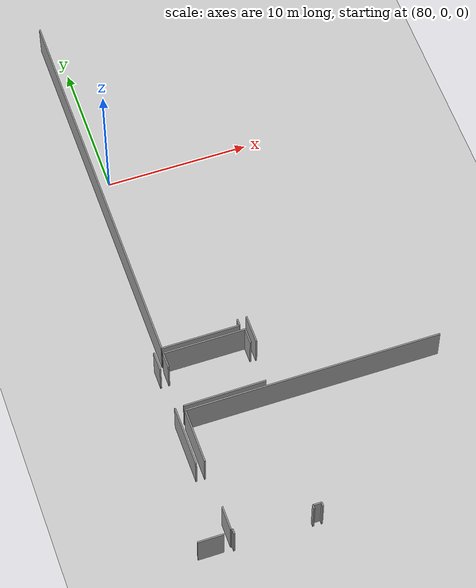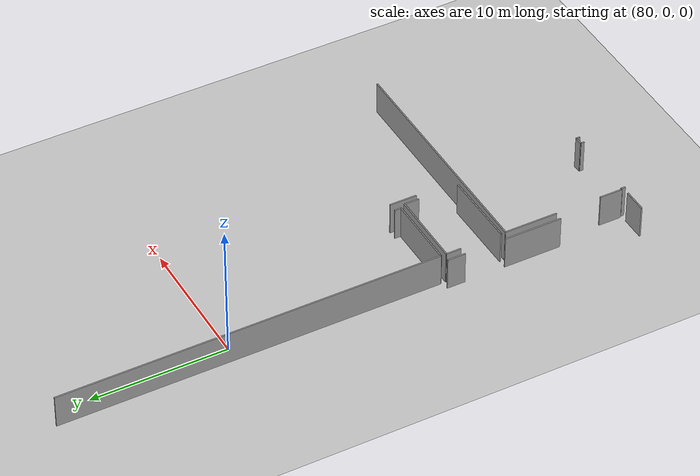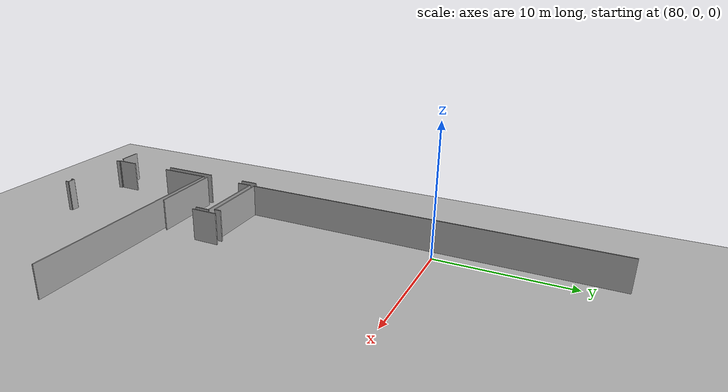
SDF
<sdf version="1.6">
 <world name="default">
  <model name="ground_plane">
   <static>1</static>
   <link name="link">
    <collision name="collision">
     <geometry><plane><normal>0 0 1</normal><size>100 100</size></plane></geometry>
     <surface><friction><ode><mu>100</mu><mu2>50</mu2></ode></friction></surface>
    </collision>
    <visual name="visual">
     <cast_shadows>0</cast_shadows>
     <geometry><plane><normal>0 0 1</normal><size>100 100</size></plane></geometry>
     <material>
      <script><uri>file://media/materials/scripts/gazebo.material</uri><name>Gazebo/Grey</name></script>
     </material>
    </visual>
   </link>
  </model>
  <model name="50010535_PLAN2">
   <static>1</static>
   <link name="Wall_480">
    <collision name="Wall_480_Collision">
     <geometry><box><size>2.03198160137 0.1 2.5</size></box></geometry>
     <pose>1.01599080068 0 1.25 0 0 0</pose>
    </collision>
    <visual name="Wall_480_Visual">
     <pose>1.01599080068 0 1.25 0 0 0</pose>
     <geometry><box><size>2.03198160137 0.1 2.5</size></box></geometry>
     <material>
      <script><uri>file://media/materials/scripts/gazebo.material</uri><name>Gazebo/Grey</name></script>
      <ambient>1 1 1 1</ambient>
     </material>
    </visual>
    <pose>187.585268388 -46.6158586558 0 0 0 1.57079632679</pose>
   </link>
   <link name="Wall_482">
    <collision name="Wall_482_Collision">
     <geometry><box><size>0.494272663164 0.1 2.5</size></box></geometry>
     <pose>0.247136331582 0 1.25 0 0 0</pose>
    </collision>
    <visual name="Wall_482_Visual">
     <pose>0.247136331582 0 1.25 0 0 0</pose>
     <geometry><box><size>0.494272663164 0.1 2.5</size></box></geometry>
     <material>
      <script><uri>file://media/materials/scripts/gazebo.material</uri><name>Gazebo/Grey</name></script>
      <ambient>1 1 1 1</ambient>
     </material>
    </visual>
    <pose>186.942840988 -44.5838770544 0 0 0 -1.57079632679</pose>
   </link>
   <link name="Wall_483">
    <collision name="Wall_483_Collision">
     <geometry><box><size>5.44004879195 0.1 2.5</size></box></geometry>
     <pose>2.72002439598 0 1.25 0 0 0</pose>
    </collision>
    <visual name="Wall_483_Visual">
     <pose>2.72002439598 0 1.25 0 0 0</pose>
     <geometry><box><size>5.44004879195 0.1 2.5</size></box></geometry>
     <material>
      <script><uri>file://media/materials/scripts/gazebo.material</uri><name>Gazebo/Grey</name></script>
      <ambient>1 1 1 1</ambient>
     </material>
    </visual>
    <pose>186.942840988 -45.0781497176 0 0 0 3.14159265359</pose>
   </link>
   <link name="Wall_484">
    <collision name="Wall_484_Collision">
     <geometry><box><size>28.1539741936 0.1 2.5</size></box></geometry>
     <pose>14.0769870968 0 1.25 0 0 0</pose>
    </collision>
    <visual name="Wall_484_Visual">
     <pose>14.0769870968 0 1.25 0 0 0</pose>
     <geometry><box><size>28.1539741936 0.1 2.5</size></box></geometry>
     <material>
      <script><uri>file://media/materials/scripts/gazebo.material</uri><name>Gazebo/Grey</name></script>
      <ambient>1 1 1 1</ambient>
     </material>
    </visual>
    <pose>181.502792196 -45.0781497176 0 0 0 1.57079632679</pose>
   </link>
   <link name="Wall_534">
    <collision name="Wall_534_Collision">
     <geometry><box><size>1.76794597308 0.1 2.5</size></box></geometry>
     <pose>0.883972986538 0 1.25 0 0 0</pose>
    </collision>
    <visual name="Wall_534_Visual">
     <pose>0.883972986538 0 1.25 0 0 0</pose>
     <geometry><box><size>1.76794597308 0.1 2.5</size></box></geometry>
     <material>
      <script><uri>file://media/materials/scripts/gazebo.material</uri><name>Gazebo/Grey</name></script>
      <ambient>1 1 1 1</ambient>
     </material>
    </visual>
    <pose>180.986410678 -59.2567867194 0 0 0 3.14159265359</pose>
   </link>
   <link name="Wall_544">
    <collision name="Wall_544_Collision">
     <geometry><box><size>1.34686124153 0.1 2.5</size></box></geometry>
     <pose>0.673430620763 0 1.25 0 0 0</pose>
    </collision>
    <visual name="Wall_544_Visual">
     <pose>0.673430620763 0 1.25 0 0 0</pose>
     <geometry><box><size>1.34686124153 0.1 2.5</size></box></geometry>
     <material>
      <script><uri>file://media/materials/scripts/gazebo.material</uri><name>Gazebo/Grey</name></script>
      <ambient>1 1 1 1</ambient>
     </material>
    </visual>
    <pose>180.920084115 -45.247905059 0 0 0 -1.57079632679</pose>
   </link>
   <link name="Wall_545">
    <collision name="Wall_545_Collision">
     <geometry><box><size>4.30182398048 0.1 2.5</size></box></geometry>
     <pose>2.15091199024 0 1.25 0 0 0</pose>
    </collision>
    <visual name="Wall_545_Visual">
     <pose>2.15091199024 0 1.25 0 0 0</pose>
     <geometry><box><size>4.30182398048 0.1 2.5</size></box></geometry>
     <material>
      <script><uri>file://media/materials/scripts/gazebo.material</uri><name>Gazebo/Grey</name></script>
      <ambient>1 1 1 1</ambient>
     </material>
    </visual>
    <pose>180.920084115 -49.6531578178 0 0 0 -1.57079632679</pose>
   </link>
   <link name="Wall_547">
    <collision name="Wall_547_Collision">
     <geometry><box><size>1.10290146948 0.1 2.5</size></box></geometry>
     <pose>0.551450734738 0 1.25 0 0 0</pose>
    </collision>
    <visual name="Wall_547_Visual">
     <pose>0.551450734738 0 1.25 0 0 0</pose>
     <geometry><box><size>1.10290146948 0.1 2.5</size></box></geometry>
     <material>
      <script><uri>file://media/materials/scripts/gazebo.material</uri><name>Gazebo/Grey</name></script>
      <ambient>1 1 1 1</ambient>
     </material>
    </visual>
    <pose>181.492373081 -46.5820600624 0 0 0 1.57079632679</pose>
   </link>
   <link name="Wall_548">
    <collision name="Wall_548_Collision">
     <geometry><box><size>5.70128904786 0.1 2.5</size></box></geometry>
     <pose>2.85064452393 0 1.25 0 0 0</pose>
    </collision>
    <visual name="Wall_548_Visual">
     <pose>2.85064452393 0 1.25 0 0 0</pose>
     <geometry><box><size>5.70128904786 0.1 2.5</size></box></geometry>
     <material>
      <script><uri>file://media/materials/scripts/gazebo.material</uri><name>Gazebo/Grey</name></script>
      <ambient>1 1 1 1</ambient>
     </material>
    </visual>
    <pose>181.492373081 -45.4791585929 0 0 0 0.0</pose>
   </link>
   <link name="Wall_549">
    <collision name="Wall_549_Collision">
     <geometry><box><size>1.10290146948 0.1 2.5</size></box></geometry>
     <pose>0.551450734738 0 1.25 0 0 0</pose>
    </collision>
    <visual name="Wall_549_Visual">
     <pose>0.551450734738 0 1.25 0 0 0</pose>
     <geometry><box><size>1.10290146948 0.1 2.5</size></box></geometry>
     <material>
      <script><uri>file://media/materials/scripts/gazebo.material</uri><name>Gazebo/Grey</name></script>
      <ambient>1 1 1 1</ambient>
     </material>
    </visual>
    <pose>187.193662128 -45.4791585929 0 0 0 -1.57079632679</pose>
   </link>
   <link name="Wall_550">
    <collision name="Wall_550_Collision">
     <geometry><box><size>5.70151558649 0.1 2.5</size></box></geometry>
     <pose>2.85075779325 0 1.25 0 0 0</pose>
    </collision>
    <visual name="Wall_550_Visual">
     <pose>2.85075779325 0 1.25 0 0 0</pose>
     <geometry><box><size>5.70151558649 0.1 2.5</size></box></geometry>
     <material>
      <script><uri>file://media/materials/scripts/gazebo.material</uri><name>Gazebo/Grey</name></script>
      <ambient>1 1 1 1</ambient>
     </material>
    </visual>
    <pose>187.193662128 -49.6211380977 0 0 0 -3.13267824743</pose>
   </link>
   <link name="Wall_556">
    <collision name="Wall_556_Collision">
     <geometry><box><size>0.283349110246 0.1 2.5</size></box></geometry>
     <pose>0.141674555123 0 1.25 0 0 0</pose>
    </collision>
    <visual name="Wall_556_Visual">
     <pose>0.141674555123 0 1.25 0 0 0</pose>
     <geometry><box><size>0.283349110246 0.1 2.5</size></box></geometry>
     <material>
      <script><uri>file://media/materials/scripts/gazebo.material</uri><name>Gazebo/Grey</name></script>
      <ambient>1 1 1 1</ambient>
     </material>
    </visual>
    <pose>187.549945046 -59.4481426656 0 0 0 1.57079632679</pose>
   </link>
   <link name="Wall_557">
    <collision name="Wall_557_Collision">
     <geometry><box><size>0.592110696747 0.1 2.5</size></box></geometry>
     <pose>0.296055348373 0 1.25 0 0 0</pose>
    </collision>
    <visual name="Wall_557_Visual">
     <pose>0.296055348373 0 1.25 0 0 0</pose>
     <geometry><box><size>0.592110696747 0.1 2.5</size></box></geometry>
     <material>
      <script><uri>file://media/materials/scripts/gazebo.material</uri><name>Gazebo/Grey</name></script>
      <ambient>1 1 1 1</ambient>
     </material>
    </visual>
    <pose>187.549945046 -59.1647935554 0 0 0 3.14159265359</pose>
   </link>
   <link name="Wall_558">
    <collision name="Wall_558_Collision">
     <geometry><box><size>0.267593374967 0.1 2.5</size></box></geometry>
     <pose>0.133796687484 0 1.25 0 0 0</pose>
    </collision>
    <visual name="Wall_558_Visual">
     <pose>0.133796687484 0 1.25 0 0 0</pose>
     <geometry><box><size>0.267593374967 0.1 2.5</size></box></geometry>
     <material>
      <script><uri>file://media/materials/scripts/gazebo.material</uri><name>Gazebo/Grey</name></script>
      <ambient>1 1 1 1</ambient>
     </material>
    </visual>
    <pose>186.957834349 -59.1647935554 0 0 0 -1.57079632679</pose>
   </link>
   <link name="Wall_559">
    <collision name="Wall_559_Collision">
     <geometry><box><size>0.334428187519 0.1 2.5</size></box></geometry>
     <pose>0.167214093759 0 1.25 0 0 0</pose>
    </collision>
    <visual name="Wall_559_Visual">
     <pose>0.167214093759 0 1.25 0 0 0</pose>
     <geometry><box><size>0.334428187519 0.1 2.5</size></box></geometry>
     <material>
      <script><uri>file://media/materials/scripts/gazebo.material</uri><name>Gazebo/Grey</name></script>
      <ambient>1 1 1 1</ambient>
     </material>
    </visual>
    <pose>181.607745723 -59.4323869304 0 0 0 1.57079632679</pose>
   </link>
   <link name="Wall_560">
    <collision name="Wall_560_Collision">
     <geometry><box><size>0.104953526934 0.1 2.5</size></box></geometry>
     <pose>0.052476763467 0 1.25 0 0 0</pose>
    </collision>
    <visual name="Wall_560_Visual">
     <pose>0.052476763467 0 1.25 0 0 0</pose>
     <geometry><box><size>0.104953526934 0.1 2.5</size></box></geometry>
     <material>
      <script><uri>file://media/materials/scripts/gazebo.material</uri><name>Gazebo/Grey</name></script>
      <ambient>1 1 1 1</ambient>
     </material>
    </visual>
    <pose>181.607745723 -59.0979587428 0 0 0 3.14159265359</pose>
   </link>
   <link name="Wall_561">
    <collision name="Wall_561_Collision">
     <geometry><box><size>1.700602911 0.1 2.5</size></box></geometry>
     <pose>0.8503014555 0 1.25 0 0 0</pose>
    </collision>
    <visual name="Wall_561_Visual">
     <pose>0.8503014555 0 1.25 0 0 0</pose>
     <geometry><box><size>1.700602911 0.1 2.5</size></box></geometry>
     <material>
      <script><uri>file://media/materials/scripts/gazebo.material</uri><name>Gazebo/Grey</name></script>
      <ambient>1 1 1 1</ambient>
     </material>
    </visual>
    <pose>181.502792196 -59.0979587428 0 0 0 1.57079632679</pose>
   </link>
   <link name="Wall_562">
    <collision name="Wall_562_Collision">
     <geometry><box><size>3.95850142628 0.1 2.5</size></box></geometry>
     <pose>1.97925071314 0 1.25 0 0 0</pose>
    </collision>
    <visual name="Wall_562_Visual">
     <pose>1.97925071314 0 1.25 0 0 0</pose>
     <geometry><box><size>3.95850142628 0.1 2.5</size></box></geometry>
     <material>
      <script><uri>file://media/materials/scripts/gazebo.material</uri><name>Gazebo/Grey</name></script>
      <ambient>1 1 1 1</ambient>
     </material>
    </visual>
    <pose>181.502792196 -53.9717540326 0 0 0 1.57079632679</pose>
   </link>
   <link name="Wall_563">
    <collision name="Wall_563_Collision">
     <geometry><box><size>17.7381625509 0.1 2.5</size></box></geometry>
     <pose>8.86908127545 0 1.25 0 0 0</pose>
    </collision>
    <visual name="Wall_563_Visual">
     <pose>8.86908127545 0 1.25 0 0 0</pose>
     <geometry><box><size>17.7381625509 0.1 2.5</size></box></geometry>
     <material>
      <script><uri>file://media/materials/scripts/gazebo.material</uri><name>Gazebo/Grey</name></script>
      <ambient>1 1 1 1</ambient>
     </material>
    </visual>
    <pose>181.502792196 -50.0132526064 0 0 0 0.0</pose>
   </link>
   <pose>-102.6 29.7873404573 0 0 0 0</pose>
  </model>
 </world>
</sdf>
